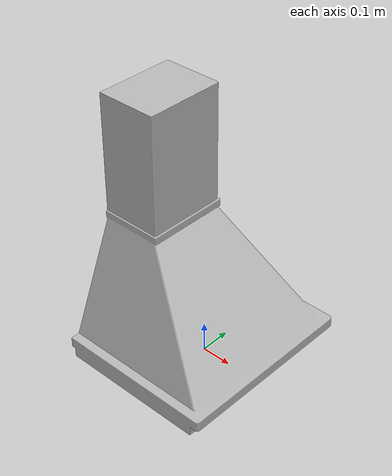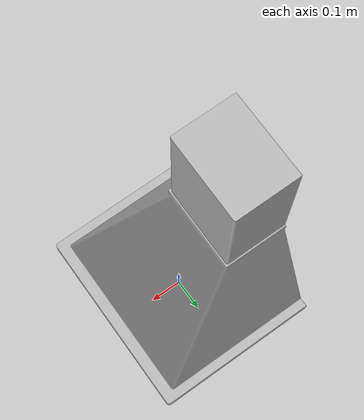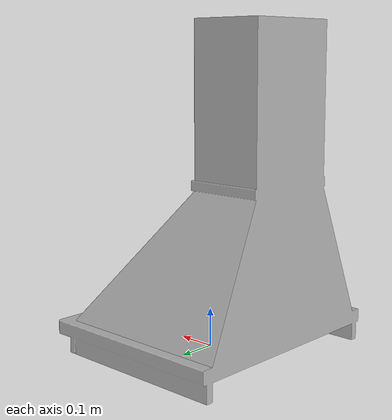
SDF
<?xml version='1.0'?>
<sdf version='1.4'>
  <model name='241'>
    <pose>0 0 0 0 0 0</pose>
    <static>true</static>
    <link name='link'>
      <collision name='collision'>
        <pose>0 0 0 0 0 0</pose>
        <geometry>
          <box>
            <size>0.51 0.6 2</size>
          </box>
        </geometry>
      </collision>
      <visual name='visual'>
        <pose>0 0 0 0 0 0</pose>
        <geometry>
          <mesh><uri>model://241/241.dae</uri></mesh>
        </geometry>
      </visual>
    </link>
  </model>
</sdf>
